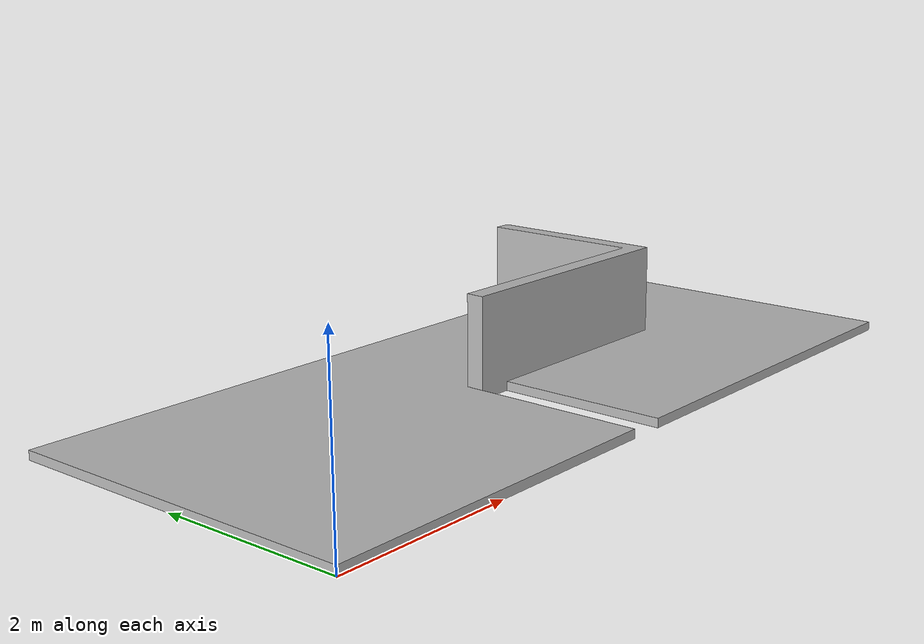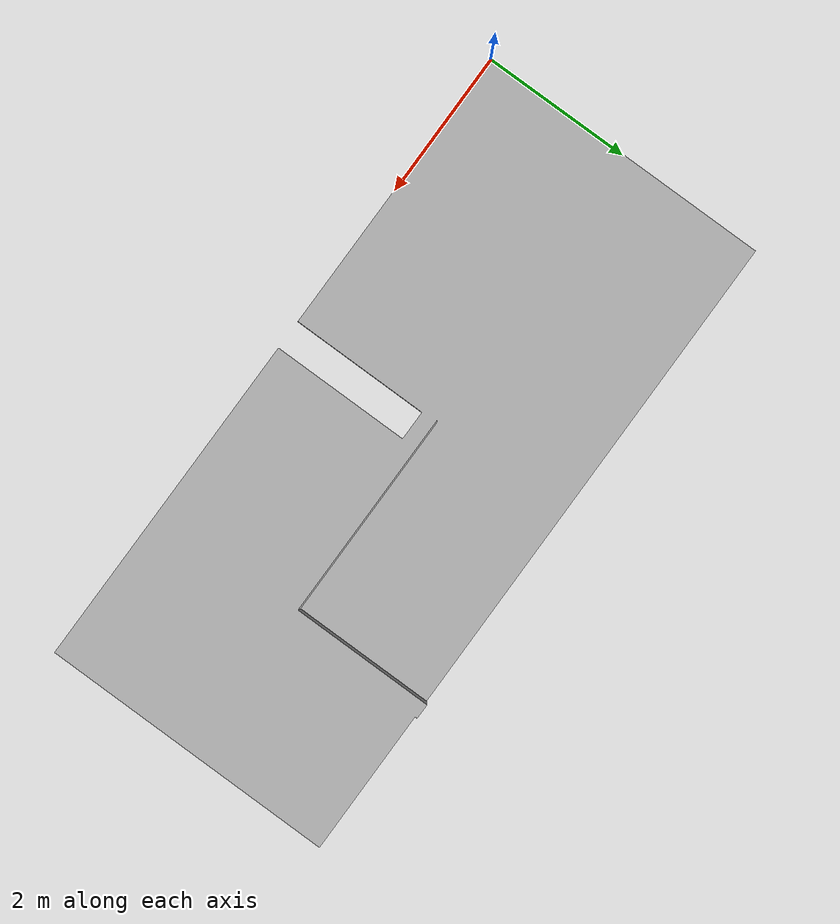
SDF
<?xml version="1.0"?>
<sdf version="1.6">
    <model name="gap_40cm_local_min">
      <static>true</static>
      <link name="body">
        <visual name="visual">
          <geometry>
            <mesh><uri>meshes/gap_40cm_local_min.stl</uri></mesh>
          </geometry>
        </visual>
        <collision name="collision">
          <geometry>
            <mesh><uri>meshes/gap_40cm_local_min.stl</uri></mesh>
          </geometry>
          <surface>
            <friction>
              <ode>
                <mu>100</mu>
                <mu2>100</mu2>
              </ode>
            </friction>
          </surface>
        </collision>
      </link>
    </model>
</sdf>
